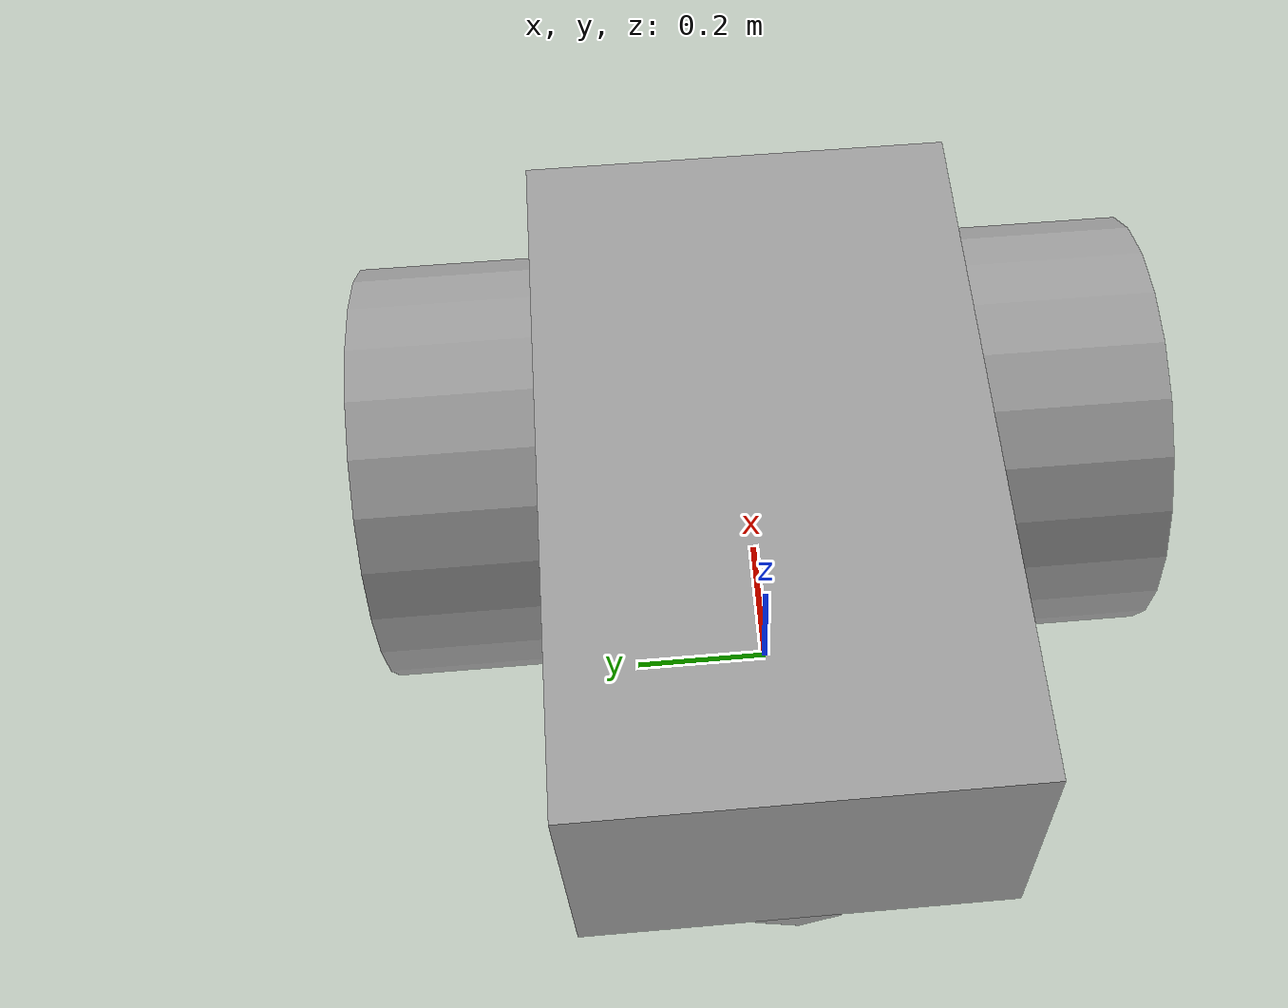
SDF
<?xml version='1.0'?>
<sdf version='1.7'>
  <model name='toycar'>
    <link name='link_4_clone'>
      <inertial>
        <mass>1</mass>
        <inertia>
          <ixx>0.145833</ixx>
          <ixy>0</ixy>
          <ixz>0</ixz>
          <iyy>0.145833</iyy>
          <iyz>0</iyz>
          <izz>0.125</izz>
        </inertia>
        <pose>0 0 0 0 -0 0</pose>
      </inertial>
      <pose>0.200121 -0.42501 0.3 1.5707 -0 0</pose>
      <gravity>1</gravity>
      <self_collide>0</self_collide>
      <kinematic>0</kinematic>
      <enable_wind>0</enable_wind>
      <visual name='visual'>
        <pose>0 0 0 0 -0 0</pose>
        <geometry>
          <cylinder>
            <radius>0.3</radius>
            <length>0.25</length>
          </cylinder>
        </geometry>
        <material>
          <lighting>1</lighting>
          <script>
            <uri>file://media/materials/scripts/gazebo.material</uri>
            <name>Gazebo/Grey</name>
          </script>
          <shader type='pixel'>
            <normal_map>__default__</normal_map>
          </shader>
          <ambient>0.3 0.3 0.3 1</ambient>
          <diffuse>0.7 0.7 0.7 1</diffuse>
          <specular>0.01 0.01 0.01 1</specular>
          <emissive>0 0 0 1</emissive>
        </material>
        <transparency>0</transparency>
        <cast_shadows>1</cast_shadows>
      </visual>
      <collision name='collision'>
        <laser_retro>0</laser_retro>
        <max_contacts>10</max_contacts>
        <pose>0 0 0 0 -0 0</pose>
        <geometry>
          <cylinder>
            <radius>0.3</radius>
            <length>0.25</length>
          </cylinder>
        </geometry>
        <surface>
          <friction>
            <ode>
              <mu>1</mu>
              <mu2>1</mu2>
              <fdir1>0 0 0</fdir1>
              <slip1>0</slip1>
              <slip2>0</slip2>
            </ode>
            <torsional>
              <coefficient>1</coefficient>
              <patch_radius>0</patch_radius>
              <surface_radius>0</surface_radius>
              <use_patch_radius>1</use_patch_radius>
              <ode>
                <slip>0</slip>
              </ode>
            </torsional>
          </friction>
          <bounce>
            <restitution_coefficient>0</restitution_coefficient>
            <threshold>1e+06</threshold>
          </bounce>
          <contact>
            <collide_without_contact>0</collide_without_contact>
            <collide_without_contact_bitmask>1</collide_without_contact_bitmask>
            <collide_bitmask>1</collide_bitmask>
            <ode>
              <soft_cfm>0</soft_cfm>
              <soft_erp>0.2</soft_erp>
              <kp>1e+13</kp>
              <kd>1</kd>
              <max_vel>0.01</max_vel>
              <min_depth>0</min_depth>
            </ode>
            <bullet>
              <split_impulse>1</split_impulse>
              <split_impulse_penetration_threshold>-0.01</split_impulse_penetration_threshold>
              <soft_cfm>0</soft_cfm>
              <soft_erp>0.2</soft_erp>
              <kp>1e+13</kp>
              <kd>1</kd>
            </bullet>
          </contact>
        </surface>
      </collision>
    </link>
    <link name='link_4_clone_clone'>
      <inertial>
        <mass>1</mass>
        <inertia>
          <ixx>0.145833</ixx>
          <ixy>0</ixy>
          <ixz>0</ixz>
          <iyy>0.145833</iyy>
          <iyz>0</iyz>
          <izz>0.125</izz>
        </inertia>
        <pose>0 0 0 0 -0 0</pose>
      </inertial>
      <pose>0.20012 0.425049 0.3 1.5707 -0 0</pose>
      <gravity>1</gravity>
      <self_collide>0</self_collide>
      <kinematic>0</kinematic>
      <enable_wind>0</enable_wind>
      <visual name='visual'>
        <pose>0 0 0 0 -0 0</pose>
        <geometry>
          <cylinder>
            <radius>0.3</radius>
            <length>0.25</length>
          </cylinder>
        </geometry>
        <material>
          <lighting>1</lighting>
          <script>
            <uri>file://media/materials/scripts/gazebo.material</uri>
            <name>Gazebo/Grey</name>
          </script>
          <shader type='pixel'>
            <normal_map>__default__</normal_map>
          </shader>
          <ambient>0.3 0.3 0.3 1</ambient>
          <diffuse>0.7 0.7 0.7 1</diffuse>
          <specular>0.01 0.01 0.01 1</specular>
          <emissive>0 0 0 1</emissive>
        </material>
        <transparency>0</transparency>
        <cast_shadows>1</cast_shadows>
      </visual>
      <collision name='collision'>
        <laser_retro>0</laser_retro>
        <max_contacts>10</max_contacts>
        <pose>0 0 0 0 -0 0</pose>
        <geometry>
          <cylinder>
            <radius>0.3</radius>
            <length>0.25</length>
          </cylinder>
        </geometry>
        <surface>
          <friction>
            <ode>
              <mu>1</mu>
              <mu2>1</mu2>
              <fdir1>0 0 0</fdir1>
              <slip1>0</slip1>
              <slip2>0</slip2>
            </ode>
            <torsional>
              <coefficient>1</coefficient>
              <patch_radius>0</patch_radius>
              <surface_radius>0</surface_radius>
              <use_patch_radius>1</use_patch_radius>
              <ode>
                <slip>0</slip>
              </ode>
            </torsional>
          </friction>
          <bounce>
            <restitution_coefficient>0</restitution_coefficient>
            <threshold>1e+06</threshold>
          </bounce>
          <contact>
            <collide_without_contact>0</collide_without_contact>
            <collide_without_contact_bitmask>1</collide_without_contact_bitmask>
            <collide_bitmask>1</collide_bitmask>
            <ode>
              <soft_cfm>0</soft_cfm>
              <soft_erp>0.2</soft_erp>
              <kp>1e+13</kp>
              <kd>1</kd>
              <max_vel>0.01</max_vel>
              <min_depth>0</min_depth>
            </ode>
            <bullet>
              <split_impulse>1</split_impulse>
              <split_impulse_penetration_threshold>-0.01</split_impulse_penetration_threshold>
              <soft_cfm>0</soft_cfm>
              <soft_erp>0.2</soft_erp>
              <kp>1e+13</kp>
              <kd>1</kd>
            </bullet>
          </contact>
        </surface>
      </collision>
    </link>
    <link name='link_5'>
      <inertial>
        <mass>1</mass>
        <inertia>
          <ixx>0.166667</ixx>
          <ixy>0</ixy>
          <ixz>0</ixz>
          <iyy>0.166667</iyy>
          <iyz>0</iyz>
          <izz>0.166667</izz>
        </inertia>
        <pose>0 0 0 0 -0 0</pose>
      </inertial>
      <pose>0.00012 2e-05 0.4 0 -0 0</pose>
      <gravity>1</gravity>
      <self_collide>0</self_collide>
      <kinematic>0</kinematic>
      <enable_wind>0</enable_wind>
      <visual name='visual'>
        <pose>0 0 0 0 -0 0</pose>
        <geometry>
          <box>
            <size>1 0.6 0.4</size>
          </box>
        </geometry>
        <material>
          <lighting>1</lighting>
          <script>
            <uri>file://media/materials/scripts/gazebo.material</uri>
            <name>Gazebo/Grey</name>
          </script>
          <shader type='pixel'>
            <normal_map>__default__</normal_map>
          </shader>
          <ambient>0.3 0.3 0.3 1</ambient>
          <diffuse>0.7 0.7 0.7 1</diffuse>
          <specular>0.01 0.01 0.01 1</specular>
          <emissive>0 0 0 1</emissive>
        </material>
        <transparency>0</transparency>
        <cast_shadows>1</cast_shadows>
      </visual>
      <collision name='collision'>
        <laser_retro>0</laser_retro>
        <max_contacts>10</max_contacts>
        <pose>0 0 0 0 -0 0</pose>
        <geometry>
          <box>
            <size>1 0.6 0.4</size>
          </box>
        </geometry>
        <surface>
          <friction>
            <ode>
              <mu>1</mu>
              <mu2>1</mu2>
              <fdir1>0 0 0</fdir1>
              <slip1>0</slip1>
              <slip2>0</slip2>
            </ode>
            <torsional>
              <coefficient>1</coefficient>
              <patch_radius>0</patch_radius>
              <surface_radius>0</surface_radius>
              <use_patch_radius>1</use_patch_radius>
              <ode>
                <slip>0</slip>
              </ode>
            </torsional>
          </friction>
          <bounce>
            <restitution_coefficient>0</restitution_coefficient>
            <threshold>1e+06</threshold>
          </bounce>
          <contact>
            <collide_without_contact>0</collide_without_contact>
            <collide_without_contact_bitmask>1</collide_without_contact_bitmask>
            <collide_bitmask>1</collide_bitmask>
            <ode>
              <soft_cfm>0</soft_cfm>
              <soft_erp>0.2</soft_erp>
              <kp>1e+13</kp>
              <kd>1</kd>
              <max_vel>0.01</max_vel>
              <min_depth>0</min_depth>
            </ode>
            <bullet>
              <split_impulse>1</split_impulse>
              <split_impulse_penetration_threshold>-0.01</split_impulse_penetration_threshold>
              <soft_cfm>0</soft_cfm>
              <soft_erp>0.2</soft_erp>
              <kp>1e+13</kp>
              <kd>1</kd>
            </bullet>
          </contact>
        </surface>
      </collision>
    </link>
    <link name='link_8'>
      <inertial>
        <mass>1</mass>
        <inertia>
          <ixx>0.1</ixx>
          <ixy>0</ixy>
          <ixz>0</ixz>
          <iyy>0.1</iyy>
          <iyz>0</iyz>
          <izz>0.1</izz>
        </inertia>
        <pose>0 0 0 0 -0 0</pose>
      </inertial>
      <pose>-0.299879 2e-05 0.2 0 -0 0</pose>
      <gravity>1</gravity>
      <self_collide>0</self_collide>
      <kinematic>0</kinematic>
      <enable_wind>0</enable_wind>
      <visual name='visual'>
        <pose>0 0 0 0 -0 0</pose>
        <geometry>
          <sphere>
            <radius>0.2</radius>
          </sphere>
        </geometry>
        <material>
          <lighting>1</lighting>
          <script>
            <uri>file://media/materials/scripts/gazebo.material</uri>
            <name>Gazebo/Grey</name>
          </script>
          <shader type='pixel'>
            <normal_map>__default__</normal_map>
          </shader>
          <ambient>0.3 0.3 0.3 1</ambient>
          <diffuse>0.7 0.7 0.7 1</diffuse>
          <specular>0.01 0.01 0.01 1</specular>
          <emissive>0 0 0 1</emissive>
        </material>
        <transparency>0</transparency>
        <cast_shadows>1</cast_shadows>
      </visual>
      <collision name='collision'>
        <laser_retro>0</laser_retro>
        <max_contacts>10</max_contacts>
        <pose>0 0 0 0 -0 0</pose>
        <geometry>
          <sphere>
            <radius>0.2</radius>
          </sphere>
        </geometry>
        <surface>
          <friction>
            <ode>
              <mu>1</mu>
              <mu2>1</mu2>
              <fdir1>0 0 0</fdir1>
              <slip1>0</slip1>
              <slip2>0</slip2>
            </ode>
            <torsional>
              <coefficient>1</coefficient>
              <patch_radius>0</patch_radius>
              <surface_radius>0</surface_radius>
              <use_patch_radius>1</use_patch_radius>
              <ode>
                <slip>0</slip>
              </ode>
            </torsional>
          </friction>
          <bounce>
            <restitution_coefficient>0</restitution_coefficient>
            <threshold>1e+06</threshold>
          </bounce>
          <contact>
            <collide_without_contact>0</collide_without_contact>
            <collide_without_contact_bitmask>1</collide_without_contact_bitmask>
            <collide_bitmask>1</collide_bitmask>
            <ode>
              <soft_cfm>0</soft_cfm>
              <soft_erp>0.2</soft_erp>
              <kp>1e+13</kp>
              <kd>1</kd>
              <max_vel>0.01</max_vel>
              <min_depth>0</min_depth>
            </ode>
            <bullet>
              <split_impulse>1</split_impulse>
              <split_impulse_penetration_threshold>-0.01</split_impulse_penetration_threshold>
              <soft_cfm>0</soft_cfm>
              <soft_erp>0.2</soft_erp>
              <kp>1e+13</kp>
              <kd>1</kd>
            </bullet>
          </contact>
        </surface>
      </collision>
    </link>
    <joint name='link_5_JOINT_1_0' type='revolute'>
      <parent>link_5</parent>
      <child>link_4_clone_clone</child>
      <pose>0 0 0 0 -0 0</pose>
      <axis>
        <xyz>0 0 1</xyz>
        <limit>
          <lower>-1.79769e+308</lower>
          <upper>1.79769e+308</upper>
          <effort>-1</effort>
          <velocity>-1</velocity>
        </limit>
        <dynamics>
          <spring_reference>0</spring_reference>
          <spring_stiffness>0</spring_stiffness>
          <damping>0</damping>
        </dynamics>
      </axis>
      <physics>
        <ode>
          <limit>
            <cfm>0</cfm>
            <erp>0.2</erp>
          </limit>
          <suspension>
            <cfm>0</cfm>
            <erp>0.2</erp>
          </suspension>
        </ode>
      </physics>
    </joint>
    <joint name='link_5_JOINT_1' type='revolute'>
      <parent>link_5</parent>
      <child>link_4_clone</child>
      <pose>0 0 0 0 -0 0</pose>
      <axis>
        <xyz>0 0 1</xyz>
        <limit>
          <lower>-1.79769e+308</lower>
          <upper>1.79769e+308</upper>
          <effort>-1</effort>
          <velocity>-1</velocity>
        </limit>
        <dynamics>
          <spring_reference>0</spring_reference>
          <spring_stiffness>0</spring_stiffness>
          <damping>0</damping>
          <friction>0</friction>
        </dynamics>
      </axis>
      <physics>
        <ode>
          <limit>
            <cfm>0</cfm>
            <erp>0.2</erp>
          </limit>
          <suspension>
            <cfm>0</cfm>
            <erp>0.2</erp>
          </suspension>
        </ode>
      </physics>
    </joint>
    <joint name='link_5_JOINT_2' type='ball'>
      <parent>link_5</parent>
      <child>link_8</child>
      <pose>0 0 0 0 -0 0</pose>
      <physics>
        <ode>
          <limit>
            <cfm>0</cfm>
            <erp>0.2</erp>
          </limit>
          <suspension>
            <cfm>0</cfm>
            <erp>0.2</erp>
          </suspension>
        </ode>
      </physics>
    </joint>
    <static>0</static>
    <allow_auto_disable>1</allow_auto_disable>
    <plugin name='follower' filename='libFollowerPlugin.so'/>
  </model>
</sdf>
